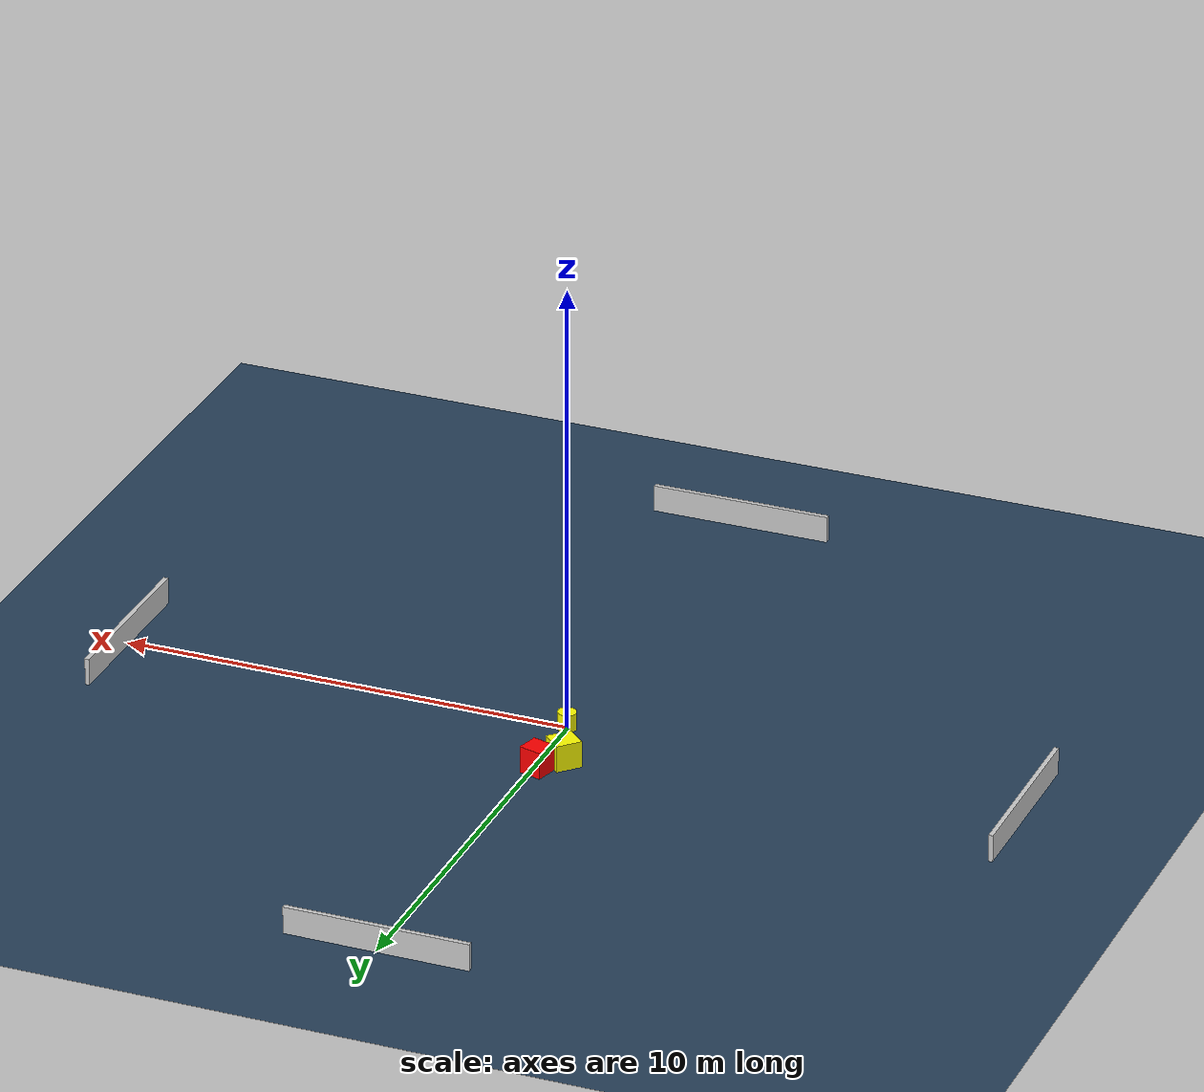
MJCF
<?xml version="1.0" ?>
<mujoco model="generated_environment">
  <option timestep="0.01" integrator="RK4" cone="elliptic"/>
  <default>
    <geom density="1"/>
  </default>
  <asset>
    <texture builtin="gradient" height="3072" name="skybox" rgb1="0.3 0.5 0.7" rgb2="0 0 0" type="skybox" width="512"/>
    <texture builtin="checker" height="300" name="groundplane" rgb1="0.2 0.3 0.4" rgb2="0.1 0.2 0.3" type="2d" width="300"/>
    <material name="groundplane" reflectance="0.2" texrepeat="5 5" texture="groundplane"/>
  </asset>
  <worldbody>
    <light dir="0 0 -1" directional="true" pos="0 0 1.5"/>
    <geom condim="3" friction="0.5 0.005 0.001" material="groundplane" name="floor" pos="0 0 0" size="0 0 0.05" type="plane"/>
    <body name="walls">
      <geom name="wall_1" condim="4" pos="-10.0 0.0 0.3" rgba="0.800000011920929 0.800000011920929 0.800000011920929 1.0" size="0.05 2.0 0.3" type="box"/>
      <geom name="wall_2" condim="4" pos="10.0 0.0 0.3" rgba="0.800000011920929 0.800000011920929 0.800000011920929 1.0" size="0.05 2.0 0.3" type="box"/>
      <geom name="wall_3" condim="4" pos="0.0 -10.0 0.3" rgba="0.800000011920929 0.800000011920929 0.800000011920929 1.0" size="2.0 0.05 0.3" type="box"/>
      <geom name="wall_4" condim="4" pos="0.0 10.0 0.3" rgba="0.800000011920929 0.800000011920929 0.800000011920929 1.0" size="2.0 0.05 0.3" type="box"/>
    </body>
    <body name="robot">
      <joint name="joint_x" type="slide" pos="0 0 0" axis="1 0 0"/>
      <joint name="joint_y" type="slide" pos="0 0 0" axis="0 1 0"/>
      <geom name="robot" type="cylinder" pos="0.0 0.0 0.2" size="0.2 0.2 0.0" mass="5.0" friction="1.0 0.005 0.0001" condim="4" rgba="1.0 1.0 0.0 1.0"/>
    </body>
    <body name="obstacle_1_movable">
      <geom name="obstacle_1_movable" condim="4" pos="-0.5212345055889595 1.4599539392696665 0.3" euler="0 0 46.695814933751876" friction="0.0 0.005 0.001" rgba="1.0 1.0 0.0 1.0" size="0.2856793787084452 0.26468132105082054 0.3" type="box" mass="0.1"/>
      <joint type="free"/>
    </body>
    <body name="obstacle_2_static">
      <geom name="obstacle_2_static" condim="4" pos="-0.12502015571912606 1.9464895348975984 0.3" euler="0 0 164.56594181712566" friction="0.0 0.005 0.001" rgba="1.0 0.0 0.0 1.0" size="0.2523091462465219 0.24395872255127019 0.3" type="box"/>
    </body>
  </worldbody>
  <actuator>
    <motor name="actuator_x" joint="joint_x" gear="1" ctrlrange="-1 1"/>
    <motor name="actuator_y" joint="joint_y" gear="1" ctrlrange="-1 1"/>
  </actuator>
</mujoco>
